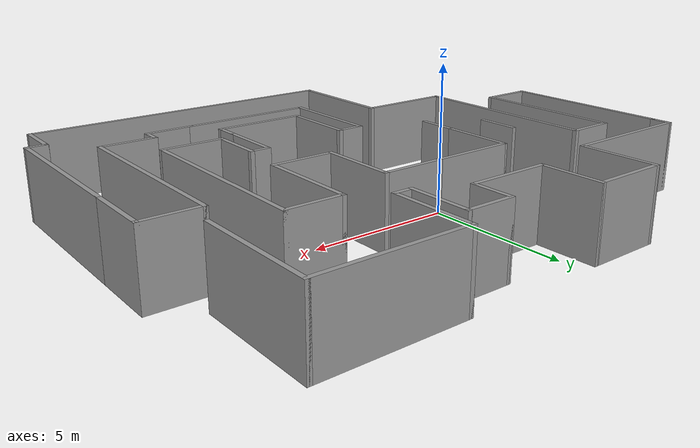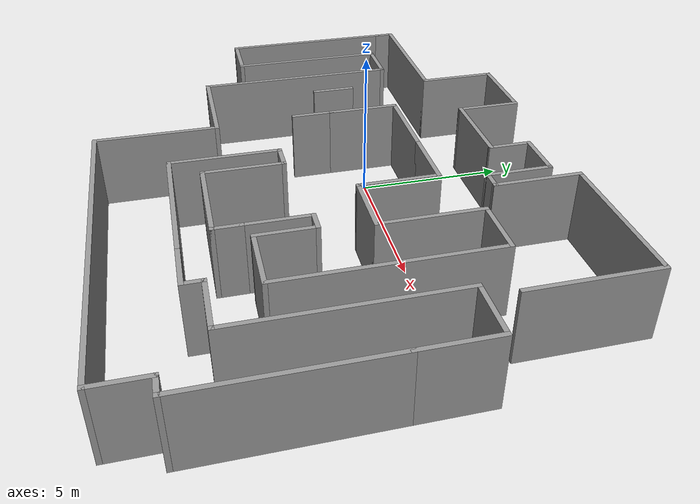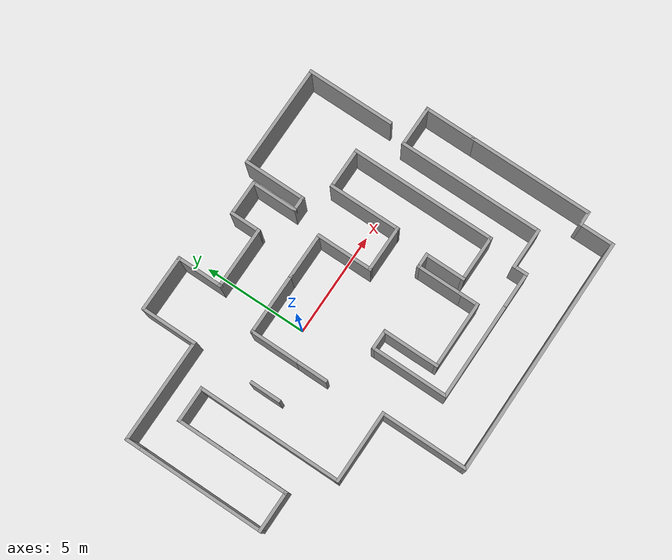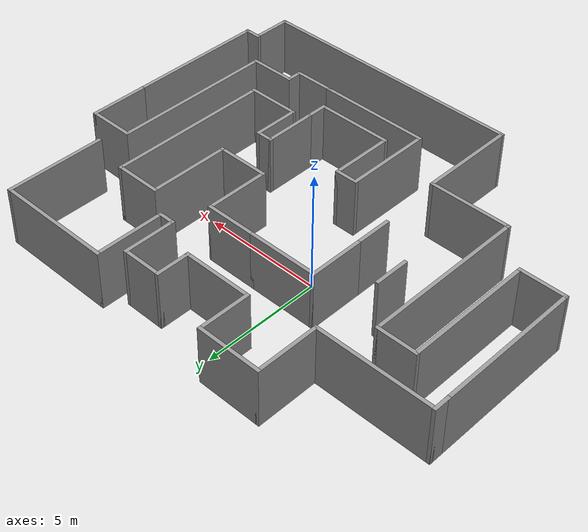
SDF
<?xml version='1.0'?>
<sdf version='1.6'>
  <model name='maze'>
    <pose frame=''>1.385 -1.65 0 0 -0 0</pose>
    <link name='Wall_0'>
      <collision name='Wall_0_Collision'>
        <geometry>
          <box>
            <size>1.5 0.15 2.5</size>
          </box>
        </geometry>
        <pose frame=''>0 0 1.25 0 -0 0</pose>
      </collision>
      <visual name='Wall_0_Visual'>
        <pose frame=''>0 0 1.25 0 -0 0</pose>
        <geometry>
          <box>
            <size>1.5 0.15 2.5</size>
          </box>
        </geometry>
        <material>
          <script>
            <uri>file://media/materials/scripts/gazebo.material</uri>
            <name>Gazebo/Grey</name>
          </script>
          <ambient>1 1 1 1</ambient>
        </material>
      </visual>
      <pose frame=''>-2.775 0.075 0 0 -0 1.5708</pose>
    </link>
    <link name='Wall_10'>
      <collision name='Wall_10_Collision'>
        <geometry>
          <box>
            <size>2.25 0.15 2.5</size>
          </box>
        </geometry>
        <pose frame=''>0 0 1.25 0 -0 0</pose>
      </collision>
      <visual name='Wall_10_Visual'>
        <pose frame=''>0 0 1.25 0 -0 0</pose>
        <geometry>
          <box>
            <size>2.25 0.15 2.5</size>
          </box>
        </geometry>
        <material>
          <script>
            <uri>file://media/materials/scripts/gazebo.material</uri>
            <name>Gazebo/Grey</name>
          </script>
          <ambient>1 1 1 1</ambient>
        </material>
      </visual>
      <pose frame=''>5.075 -3 0 0 -0 3.14159</pose>
    </link>
    <link name='Wall_11'>
      <collision name='Wall_11_Collision'>
        <geometry>
          <box>
            <size>2 0.15 2.5</size>
          </box>
        </geometry>
        <pose frame=''>0 0 1.25 0 -0 0</pose>
      </collision>
      <visual name='Wall_11_Visual'>
        <pose frame=''>0 0 1.25 0 -0 0</pose>
        <geometry>
          <box>
            <size>2 0.15 2.5</size>
          </box>
        </geometry>
        <material>
          <script>
            <uri>file://media/materials/scripts/gazebo.material</uri>
            <name>Gazebo/Grey</name>
          </script>
          <ambient>1 1 1 1</ambient>
        </material>
      </visual>
      <pose frame=''>4.025 -2.075 0 0 -0 1.5708</pose>
    </link>
    <link name='Wall_12'>
      <collision name='Wall_12_Collision'>
        <geometry>
          <box>
            <size>0.75 0.15 2.5</size>
          </box>
        </geometry>
        <pose frame=''>0 0 1.25 0 -0 0</pose>
      </collision>
      <visual name='Wall_12_Visual'>
        <pose frame=''>0 0 1.25 0 -0 0</pose>
        <geometry>
          <box>
            <size>0.75 0.15 2.5</size>
          </box>
        </geometry>
        <material>
          <script>
            <uri>file://media/materials/scripts/gazebo.material</uri>
            <name>Gazebo/Grey</name>
          </script>
          <ambient>1 1 1 1</ambient>
        </material>
      </visual>
      <pose frame=''>3.725 -1.15 0 0 -0 3.14159</pose>
    </link>
    <link name='Wall_13'>
      <collision name='Wall_13_Collision'>
        <geometry>
          <box>
            <size>2.25 0.15 2.5</size>
          </box>
        </geometry>
        <pose frame=''>0 0 1.25 0 -0 0</pose>
      </collision>
      <visual name='Wall_13_Visual'>
        <pose frame=''>0 0 1.25 0 -0 0</pose>
        <geometry>
          <box>
            <size>2.25 0.15 2.5</size>
          </box>
        </geometry>
        <material>
          <script>
            <uri>file://media/materials/scripts/gazebo.material</uri>
            <name>Gazebo/Grey</name>
          </script>
          <ambient>1 1 1 1</ambient>
        </material>
      </visual>
      <pose frame=''>3.425 -2.2 0 0 0 -1.5708</pose>
    </link>
    <link name='Wall_15'>
      <collision name='Wall_15_Collision'>
        <geometry>
          <box>
            <size>1 0.15 2.5</size>
          </box>
        </geometry>
        <pose frame=''>0 0 1.25 0 -0 0</pose>
      </collision>
      <visual name='Wall_15_Visual'>
        <pose frame=''>0 0 1.25 0 -0 0</pose>
        <geometry>
          <box>
            <size>1 0.15 2.5</size>
          </box>
        </geometry>
        <material>
          <script>
            <uri>file://media/materials/scripts/gazebo.material</uri>
            <name>Gazebo/Grey</name>
          </script>
          <ambient>1 1 1 1</ambient>
        </material>
      </visual>
      <pose frame=''>3.425 -3.675 0 0 0 -1.5708</pose>
    </link>
    <link name='Wall_16'>
      <collision name='Wall_16_Collision'>
        <geometry>
          <box>
            <size>3.25 0.15 2.5</size>
          </box>
        </geometry>
        <pose frame=''>0 0 1.25 0 -0 0</pose>
      </collision>
      <visual name='Wall_16_Visual'>
        <pose frame=''>0 0 1.25 0 -0 0</pose>
        <geometry>
          <box>
            <size>3.25 0.15 2.5</size>
          </box>
        </geometry>
        <material>
          <script>
            <uri>file://media/materials/scripts/gazebo.material</uri>
            <name>Gazebo/Grey</name>
          </script>
          <ambient>1 1 1 1</ambient>
        </material>
      </visual>
      <pose frame=''>1.875 -4.1 0 0 -0 3.14159</pose>
    </link>
    <link name='Wall_17'>
      <collision name='Wall_17_Collision'>
        <geometry>
          <box>
            <size>2.75 0.15 2.5</size>
          </box>
        </geometry>
        <pose frame=''>0 0 1.25 0 -0 0</pose>
      </collision>
      <visual name='Wall_17_Visual'>
        <pose frame=''>0 0 1.25 0 -0 0</pose>
        <geometry>
          <box>
            <size>2.75 0.15 2.5</size>
          </box>
        </geometry>
        <material>
          <script>
            <uri>file://media/materials/scripts/gazebo.material</uri>
            <name>Gazebo/Grey</name>
          </script>
          <ambient>1 1 1 1</ambient>
        </material>
      </visual>
      <pose frame=''>0.325 -2.8 0 0 -0 1.5708</pose>
    </link>
    <link name='Wall_18'>
      <collision name='Wall_18_Collision'>
        <geometry>
          <box>
            <size>1 0.15 2.5</size>
          </box>
        </geometry>
        <pose frame=''>0 0 1.25 0 -0 0</pose>
      </collision>
      <visual name='Wall_18_Visual'>
        <pose frame=''>0 0 1.25 0 -0 0</pose>
        <geometry>
          <box>
            <size>1 0.15 2.5</size>
          </box>
        </geometry>
        <material>
          <script>
            <uri>file://media/materials/scripts/gazebo.material</uri>
            <name>Gazebo/Grey</name>
          </script>
          <ambient>1 1 1 1</ambient>
        </material>
      </visual>
      <pose frame=''>-0.1 -1.5 0 0 -0 3.14159</pose>
    </link>
    <link name='Wall_19'>
      <collision name='Wall_19_Collision'>
        <geometry>
          <box>
            <size>3.75 0.15 2.5</size>
          </box>
        </geometry>
        <pose frame=''>0 0 1.25 0 -0 0</pose>
      </collision>
      <visual name='Wall_19_Visual'>
        <pose frame=''>0 0 1.25 0 -0 0</pose>
        <geometry>
          <box>
            <size>3.75 0.15 2.5</size>
          </box>
        </geometry>
        <material>
          <script>
            <uri>file://media/materials/scripts/gazebo.material</uri>
            <name>Gazebo/Grey</name>
          </script>
          <ambient>1 1 1 1</ambient>
        </material>
      </visual>
      <pose frame=''>-0.525 -3.3 0 0 0 -1.5708</pose>
    </link>
    <link name='Wall_2'>
      <collision name='Wall_2_Collision'>
        <geometry>
          <box>
            <size>2.5 0.15 2.5</size>
          </box>
        </geometry>
        <pose frame=''>0 0 1.25 0 -0 0</pose>
      </collision>
      <visual name='Wall_2_Visual'>
        <pose frame=''>0 0 1.25 0 -0 0</pose>
        <geometry>
          <box>
            <size>2.5 0.15 2.5</size>
          </box>
        </geometry>
        <material>
          <script>
            <uri>file://media/materials/scripts/gazebo.material</uri>
            <name>Gazebo/Grey</name>
          </script>
          <ambient>1 1 1 1</ambient>
        </material>
      </visual>
      <pose frame=''>-2.775 1.925 0 0 -0 1.5708</pose>
    </link>
    <link name='Wall_20'>
      <collision name='Wall_20_Collision'>
        <geometry>
          <box>
            <size>4.75 0.15 2.5</size>
          </box>
        </geometry>
        <pose frame=''>0 0 1.25 0 -0 0</pose>
      </collision>
      <visual name='Wall_20_Visual'>
        <pose frame=''>0 0 1.25 0 -0 0</pose>
        <geometry>
          <box>
            <size>4.75 0.15 2.5</size>
          </box>
        </geometry>
        <material>
          <script>
            <uri>file://media/materials/scripts/gazebo.material</uri>
            <name>Gazebo/Grey</name>
          </script>
          <ambient>1 1 1 1</ambient>
        </material>
      </visual>
      <pose frame=''>1.775 -5.1 0 0 -0 0</pose>
    </link>
    <link name='Wall_21'>
      <collision name='Wall_21_Collision'>
        <geometry>
          <box>
            <size>1.75 0.15 2.5</size>
          </box>
        </geometry>
        <pose frame=''>0 0 1.25 0 -0 0</pose>
      </collision>
      <visual name='Wall_21_Visual'>
        <pose frame=''>0 0 1.25 0 -0 0</pose>
        <geometry>
          <box>
            <size>1.75 0.15 2.5</size>
          </box>
        </geometry>
        <material>
          <script>
            <uri>file://media/materials/scripts/gazebo.material</uri>
            <name>Gazebo/Grey</name>
          </script>
          <ambient>1 1 1 1</ambient>
        </material>
      </visual>
      <pose frame=''>4.875 -5.1 0 0 -0 0</pose>
    </link>
    <link name='Wall_22'>
      <collision name='Wall_22_Collision'>
        <geometry>
          <box>
            <size>0.75 0.15 2.5</size>
          </box>
        </geometry>
        <pose frame=''>0 0 1.25 0 -0 0</pose>
      </collision>
      <visual name='Wall_22_Visual'>
        <pose frame=''>0 0 1.25 0 -0 0</pose>
        <geometry>
          <box>
            <size>0.75 0.15 2.5</size>
          </box>
        </geometry>
        <material>
          <script>
            <uri>file://media/materials/scripts/gazebo.material</uri>
            <name>Gazebo/Grey</name>
          </script>
          <ambient>1 1 1 1</ambient>
        </material>
      </visual>
      <pose frame=''>5.675 -4.8 0 0 -0 1.5708</pose>
    </link>
    <link name='Wall_23'>
      <collision name='Wall_23_Collision'>
        <geometry>
          <box>
            <size>2 0.15 2.5</size>
          </box>
        </geometry>
        <pose frame=''>0 0 1.25 0 -0 0</pose>
      </collision>
      <visual name='Wall_23_Visual'>
        <pose frame=''>0 0 1.25 0 -0 0</pose>
        <geometry>
          <box>
            <size>2 0.15 2.5</size>
          </box>
        </geometry>
        <material>
          <script>
            <uri>file://media/materials/scripts/gazebo.material</uri>
            <name>Gazebo/Grey</name>
          </script>
          <ambient>1 1 1 1</ambient>
        </material>
      </visual>
      <pose frame=''>6.6 -4.5 0 0 -0 0</pose>
    </link>
    <link name='Wall_24'>
      <collision name='Wall_24_Collision'>
        <geometry>
          <box>
            <size>7 0.15 2.5</size>
          </box>
        </geometry>
        <pose frame=''>0 0 1.25 0 -0 0</pose>
      </collision>
      <visual name='Wall_24_Visual'>
        <pose frame=''>0 0 1.25 0 -0 0</pose>
        <geometry>
          <box>
            <size>7 0.15 2.5</size>
          </box>
        </geometry>
        <material>
          <script>
            <uri>file://media/materials/scripts/gazebo.material</uri>
            <name>Gazebo/Grey</name>
          </script>
          <ambient>1 1 1 1</ambient>
        </material>
      </visual>
      <pose frame=''>7.525 -1.075 0 0 -0 1.5708</pose>
    </link>
    <link name='Wall_25'>
      <collision name='Wall_25_Collision'>
        <geometry>
          <box>
            <size>2 0.15 2.5</size>
          </box>
        </geometry>
        <pose frame=''>0 0 1.25 0 -0 0</pose>
      </collision>
      <visual name='Wall_25_Visual'>
        <pose frame=''>0 0 1.25 0 -0 0</pose>
        <geometry>
          <box>
            <size>2 0.15 2.5</size>
          </box>
        </geometry>
        <material>
          <script>
            <uri>file://media/materials/scripts/gazebo.material</uri>
            <name>Gazebo/Grey</name>
          </script>
          <ambient>1 1 1 1</ambient>
        </material>
      </visual>
      <pose frame=''>8.45 2.35 0 0 -0 0</pose>
    </link>
    <link name='Wall_26'>
      <collision name='Wall_26_Collision'>
        <geometry>
          <box>
            <size>2.5 0.15 2.5</size>
          </box>
        </geometry>
        <pose frame=''>0 0 1.25 0 -0 0</pose>
      </collision>
      <visual name='Wall_26_Visual'>
        <pose frame=''>0 0 1.25 0 -0 0</pose>
        <geometry>
          <box>
            <size>2.5 0.15 2.5</size>
          </box>
        </geometry>
        <material>
          <script>
            <uri>file://media/materials/scripts/gazebo.material</uri>
            <name>Gazebo/Grey</name>
          </script>
          <ambient>1 1 1 1</ambient>
        </material>
      </visual>
      <pose frame=''>9.375 1.175 0 0 0 -1.5708</pose>
    </link>
    <link name='Wall_27'>
      <collision name='Wall_27_Collision'>
        <geometry>
          <box>
            <size>6 0.15 2.5</size>
          </box>
        </geometry>
        <pose frame=''>0 0 1.25 0 -0 0</pose>
      </collision>
      <visual name='Wall_27_Visual'>
        <pose frame=''>0 0 1.25 0 -0 0</pose>
        <geometry>
          <box>
            <size>6 0.15 2.5</size>
          </box>
        </geometry>
        <material>
          <script>
            <uri>file://media/materials/scripts/gazebo.material</uri>
            <name>Gazebo/Grey</name>
          </script>
          <ambient>1 1 1 1</ambient>
        </material>
      </visual>
      <pose frame=''>9.375 -2.925 0 0 0 -1.5708</pose>
    </link>
    <link name='Wall_28'>
      <collision name='Wall_28_Collision'>
        <geometry>
          <box>
            <size>0.75 0.15 2.5</size>
          </box>
        </geometry>
        <pose frame=''>0 0 1.25 0 -0 0</pose>
      </collision>
      <visual name='Wall_28_Visual'>
        <pose frame=''>0 0 1.25 0 -0 0</pose>
        <geometry>
          <box>
            <size>0.75 0.15 2.5</size>
          </box>
        </geometry>
        <material>
          <script>
            <uri>file://media/materials/scripts/gazebo.material</uri>
            <name>Gazebo/Grey</name>
          </script>
          <ambient>1 1 1 1</ambient>
        </material>
      </visual>
      <pose frame=''>9.075 -5.85 0 0 -0 3.14159</pose>
    </link>
    <link name='Wall_29'>
      <collision name='Wall_29_Collision'>
        <geometry>
          <box>
            <size>1.75 0.15 2.5</size>
          </box>
        </geometry>
        <pose frame=''>0 0 1.25 0 -0 0</pose>
      </collision>
      <visual name='Wall_29_Visual'>
        <pose frame=''>0 0 1.25 0 -0 0</pose>
        <geometry>
          <box>
            <size>1.75 0.15 2.5</size>
          </box>
        </geometry>
        <material>
          <script>
            <uri>file://media/materials/scripts/gazebo.material</uri>
            <name>Gazebo/Grey</name>
          </script>
          <ambient>1 1 1 1</ambient>
        </material>
      </visual>
      <pose frame=''>8.775 -6.65 0 0 0 -1.5708</pose>
    </link>
    <link name='Wall_3'>
      <collision name='Wall_3_Collision'>
        <geometry>
          <box>
            <size>3 0.15 2.5</size>
          </box>
        </geometry>
        <pose frame=''>0 0 1.25 0 -0 0</pose>
      </collision>
      <visual name='Wall_3_Visual'>
        <pose frame=''>0 0 1.25 0 -0 0</pose>
        <geometry>
          <box>
            <size>3 0.15 2.5</size>
          </box>
        </geometry>
        <material>
          <script>
            <uri>file://media/materials/scripts/gazebo.material</uri>
            <name>Gazebo/Grey</name>
          </script>
          <ambient>1 1 1 1</ambient>
        </material>
      </visual>
      <pose frame=''>-1.35 3.1 0 0 -0 0</pose>
    </link>
    <link name='Wall_30'>
      <collision name='Wall_30_Collision'>
        <geometry>
          <box>
            <size>11.5 0.15 2.5</size>
          </box>
        </geometry>
        <pose frame=''>0 0 1.25 0 -0 0</pose>
      </collision>
      <visual name='Wall_30_Visual'>
        <pose frame=''>0 0 1.25 0 -0 0</pose>
        <geometry>
          <box>
            <size>11.5 0.15 2.5</size>
          </box>
        </geometry>
        <material>
          <script>
            <uri>file://media/materials/scripts/gazebo.material</uri>
            <name>Gazebo/Grey</name>
          </script>
          <ambient>1 1 1 1</ambient>
        </material>
      </visual>
      <pose frame=''>3.1 -7.45 0 0 -0 3.14159</pose>
    </link>
    <link name='Wall_31'>
      <collision name='Wall_31_Collision'>
        <geometry>
          <box>
            <size>4.25 0.15 2.5</size>
          </box>
        </geometry>
        <pose frame=''>0 0 1.25 0 -0 0</pose>
      </collision>
      <visual name='Wall_31_Visual'>
        <pose frame=''>0 0 1.25 0 -0 0</pose>
        <geometry>
          <box>
            <size>4.25 0.15 2.5</size>
          </box>
        </geometry>
        <material>
          <script>
            <uri>file://media/materials/scripts/gazebo.material</uri>
            <name>Gazebo/Grey</name>
          </script>
          <ambient>1 1 1 1</ambient>
        </material>
      </visual>
      <pose frame=''>-2.575 -5.4 0 0 -0 1.5708</pose>
    </link>
    <link name='Wall_32'>
      <collision name='Wall_32_Collision'>
        <geometry>
          <box>
            <size>3.5 0.15 2.5</size>
          </box>
        </geometry>
        <pose frame=''>0 0 1.25 0 -0 0</pose>
      </collision>
      <visual name='Wall_32_Visual'>
        <pose frame=''>0 0 1.25 0 -0 0</pose>
        <geometry>
          <box>
            <size>3.5 0.15 2.5</size>
          </box>
        </geometry>
        <material>
          <script>
            <uri>file://media/materials/scripts/gazebo.material</uri>
            <name>Gazebo/Grey</name>
          </script>
          <ambient>1 1 1 1</ambient>
        </material>
      </visual>
      <pose frame=''>-4.25 -3.35 0 0 -0 3.14159</pose>
    </link>
    <link name='Wall_33'>
      <collision name='Wall_33_Collision'>
        <geometry>
          <box>
            <size>7 0.15 2.5</size>
          </box>
        </geometry>
        <pose frame=''>0 0 1.25 0 -0 0</pose>
      </collision>
      <visual name='Wall_33_Visual'>
        <pose frame=''>0 0 1.25 0 -0 0</pose>
        <geometry>
          <box>
            <size>7 0.15 2.5</size>
          </box>
        </geometry>
        <material>
          <script>
            <uri>file://media/materials/scripts/gazebo.material</uri>
            <name>Gazebo/Grey</name>
          </script>
          <ambient>1 1 1 1</ambient>
        </material>
      </visual>
      <pose frame=''>-5.925 0.075 0 0 -0 1.5708</pose>
    </link>
    <link name='Wall_34'>
      <collision name='Wall_34_Collision'>
        <geometry>
          <box>
            <size>1.75 0.15 2.5</size>
          </box>
        </geometry>
        <pose frame=''>0 0 1.25 0 -0 0</pose>
      </collision>
      <visual name='Wall_34_Visual'>
        <pose frame=''>0 0 1.25 0 -0 0</pose>
        <geometry>
          <box>
            <size>1.75 0.15 2.5</size>
          </box>
        </geometry>
        <material>
          <script>
            <uri>file://media/materials/scripts/gazebo.material</uri>
            <name>Gazebo/Grey</name>
          </script>
          <ambient>1 1 1 1</ambient>
        </material>
      </visual>
      <pose frame=''>-6.725 3.5 0 0 -0 3.14159</pose>
    </link>
    <link name='Wall_35'>
      <collision name='Wall_35_Collision'>
        <geometry>
          <box>
            <size>5.5 0.15 2.5</size>
          </box>
        </geometry>
        <pose frame=''>0 0 1.25 0 -0 0</pose>
      </collision>
      <visual name='Wall_35_Visual'>
        <pose frame=''>0 0 1.25 0 -0 0</pose>
        <geometry>
          <box>
            <size>5.5 0.15 2.5</size>
          </box>
        </geometry>
        <material>
          <script>
            <uri>file://media/materials/scripts/gazebo.material</uri>
            <name>Gazebo/Grey</name>
          </script>
          <ambient>1 1 1 1</ambient>
        </material>
      </visual>
      <pose frame=''>-7.525 0.825 0 0 0 -1.5708</pose>
    </link>
    <link name='Wall_36'>
      <collision name='Wall_36_Collision'>
        <geometry>
          <box>
            <size>2 0.15 2.5</size>
          </box>
        </geometry>
        <pose frame=''>0 0 1.25 0 -0 0</pose>
      </collision>
      <visual name='Wall_36_Visual'>
        <pose frame=''>0 0 1.25 0 -0 0</pose>
        <geometry>
          <box>
            <size>2 0.15 2.5</size>
          </box>
        </geometry>
        <material>
          <script>
            <uri>file://media/materials/scripts/gazebo.material</uri>
            <name>Gazebo/Grey</name>
          </script>
          <ambient>1 1 1 1</ambient>
        </material>
      </visual>
      <pose frame=''>-8.45 -1.85 0 0 -0 3.14159</pose>
    </link>
    <link name='Wall_37'>
      <collision name='Wall_37_Collision'>
        <geometry>
          <box>
            <size>6.25 0.15 2.5</size>
          </box>
        </geometry>
        <pose frame=''>0 0 1.25 0 -0 0</pose>
      </collision>
      <visual name='Wall_37_Visual'>
        <pose frame=''>0 0 1.25 0 -0 0</pose>
        <geometry>
          <box>
            <size>6.25 0.15 2.5</size>
          </box>
        </geometry>
        <material>
          <script>
            <uri>file://media/materials/scripts/gazebo.material</uri>
            <name>Gazebo/Grey</name>
          </script>
          <ambient>1 1 1 1</ambient>
        </material>
      </visual>
      <pose frame=''>-9.375 1.2 0 0 -0 1.5708</pose>
    </link>
    <link name='Wall_39'>
      <collision name='Wall_39_Collision'>
        <geometry>
          <box>
            <size>1.5 0.15 2.5</size>
          </box>
        </geometry>
        <pose frame=''>0 0 1.25 0 -0 0</pose>
      </collision>
      <visual name='Wall_39_Visual'>
        <pose frame=''>0 0 1.25 0 -0 0</pose>
        <geometry>
          <box>
            <size>1.5 0.15 2.5</size>
          </box>
        </geometry>
        <material>
          <script>
            <uri>file://media/materials/scripts/gazebo.material</uri>
            <name>Gazebo/Grey</name>
          </script>
          <ambient>1 1 1 1</ambient>
        </material>
      </visual>
      <pose frame=''>-4.55299 1.21985 0 0 0 -1.5708</pose>
    </link>
    <link name='Wall_4'>
      <collision name='Wall_4_Collision'>
        <geometry>
          <box>
            <size>2.25 0.15 2.5</size>
          </box>
        </geometry>
        <pose frame=''>0 0 1.25 0 -0 0</pose>
      </collision>
      <visual name='Wall_4_Visual'>
        <pose frame=''>0 0 1.25 0 -0 0</pose>
        <geometry>
          <box>
            <size>2.25 0.15 2.5</size>
          </box>
        </geometry>
        <material>
          <script>
            <uri>file://media/materials/scripts/gazebo.material</uri>
            <name>Gazebo/Grey</name>
          </script>
          <ambient>1 1 1 1</ambient>
        </material>
      </visual>
      <pose frame=''>1.125 3.1 0 0 -0 0</pose>
    </link>
    <link name='Wall_41'>
      <collision name='Wall_41_Collision'>
        <geometry>
          <box>
            <size>0.75 0.15 2.5</size>
          </box>
        </geometry>
        <pose frame=''>0 0 1.25 0 -0 0</pose>
      </collision>
      <visual name='Wall_41_Visual'>
        <pose frame=''>0 0 1.25 0 -0 0</pose>
        <geometry>
          <box>
            <size>0.75 0.15 2.5</size>
          </box>
        </geometry>
        <material>
          <script>
            <uri>file://media/materials/scripts/gazebo.material</uri>
            <name>Gazebo/Grey</name>
          </script>
          <ambient>1 1 1 1</ambient>
        </material>
      </visual>
      <pose frame=''>-9.375 4.55 0 0 -0 1.5708</pose>
    </link>
    <link name='Wall_42'>
      <collision name='Wall_42_Collision'>
        <geometry>
          <box>
            <size>5 0.15 2.5</size>
          </box>
        </geometry>
        <pose frame=''>0 0 1.25 0 -0 0</pose>
      </collision>
      <visual name='Wall_42_Visual'>
        <pose frame=''>0 0 1.25 0 -0 0</pose>
        <geometry>
          <box>
            <size>5 0.15 2.5</size>
          </box>
        </geometry>
        <material>
          <script>
            <uri>file://media/materials/scripts/gazebo.material</uri>
            <name>Gazebo/Grey</name>
          </script>
          <ambient>1 1 1 1</ambient>
        </material>
      </visual>
      <pose frame=''>-6.95 4.85 0 0 -0 0</pose>
    </link>
    <link name='Wall_43'>
      <collision name='Wall_43_Collision'>
        <geometry>
          <box>
            <size>2.75 0.15 2.5</size>
          </box>
        </geometry>
        <pose frame=''>0 0 1.25 0 -0 0</pose>
      </collision>
      <visual name='Wall_43_Visual'>
        <pose frame=''>0 0 1.25 0 -0 0</pose>
        <geometry>
          <box>
            <size>2.75 0.15 2.5</size>
          </box>
        </geometry>
        <material>
          <script>
            <uri>file://media/materials/scripts/gazebo.material</uri>
            <name>Gazebo/Grey</name>
          </script>
          <ambient>1 1 1 1</ambient>
        </material>
      </visual>
      <pose frame=''>-4.525 6.15 0 0 -0 1.5708</pose>
    </link>
    <link name='Wall_44'>
      <collision name='Wall_44_Collision'>
        <geometry>
          <box>
            <size>2.75 0.15 2.5</size>
          </box>
        </geometry>
        <pose frame=''>0 0 1.25 0 -0 0</pose>
      </collision>
      <visual name='Wall_44_Visual'>
        <pose frame=''>0 0 1.25 0 -0 0</pose>
        <geometry>
          <box>
            <size>2.75 0.15 2.5</size>
          </box>
        </geometry>
        <material>
          <script>
            <uri>file://media/materials/scripts/gazebo.material</uri>
            <name>Gazebo/Grey</name>
          </script>
          <ambient>1 1 1 1</ambient>
        </material>
      </visual>
      <pose frame=''>-3.225 7.45 0 0 -0 0</pose>
    </link>
    <link name='Wall_45'>
      <collision name='Wall_45_Collision'>
        <geometry>
          <box>
            <size>2.25 0.15 2.5</size>
          </box>
        </geometry>
        <pose frame=''>0 0 1.25 0 -0 0</pose>
      </collision>
      <visual name='Wall_45_Visual'>
        <pose frame=''>0 0 1.25 0 -0 0</pose>
        <geometry>
          <box>
            <size>2.25 0.15 2.5</size>
          </box>
        </geometry>
        <material>
          <script>
            <uri>file://media/materials/scripts/gazebo.material</uri>
            <name>Gazebo/Grey</name>
          </script>
          <ambient>1 1 1 1</ambient>
        </material>
      </visual>
      <pose frame=''>-1.925 6.4 0 0 0 -1.5708</pose>
    </link>
    <link name='Wall_47'>
      <collision name='Wall_47_Collision'>
        <geometry>
          <box>
            <size>3 0.15 2.5</size>
          </box>
        </geometry>
        <pose frame=''>0 0 1.25 0 -0 0</pose>
      </collision>
      <visual name='Wall_47_Visual'>
        <pose frame=''>0 0 1.25 0 -0 0</pose>
        <geometry>
          <box>
            <size>3 0.15 2.5</size>
          </box>
        </geometry>
        <material>
          <script>
            <uri>file://media/materials/scripts/gazebo.material</uri>
            <name>Gazebo/Grey</name>
          </script>
          <ambient>1 1 1 1</ambient>
        </material>
      </visual>
      <pose frame=''>-0.5 5.35 0 0 -0 0</pose>
    </link>
    <link name='Wall_48'>
      <collision name='Wall_48_Collision'>
        <geometry>
          <box>
            <size>1.5 0.15 2.5</size>
          </box>
        </geometry>
        <pose frame=''>0 0 1.25 0 -0 0</pose>
      </collision>
      <visual name='Wall_48_Visual'>
        <pose frame=''>0 0 1.25 0 -0 0</pose>
        <geometry>
          <box>
            <size>1.5 0.15 2.5</size>
          </box>
        </geometry>
        <material>
          <script>
            <uri>file://media/materials/scripts/gazebo.material</uri>
            <name>Gazebo/Grey</name>
          </script>
          <ambient>1 1 1 1</ambient>
        </material>
      </visual>
      <pose frame=''>0.925 6.025 0 0 -0 1.5708</pose>
    </link>
    <link name='Wall_49'>
      <collision name='Wall_49_Collision'>
        <geometry>
          <box>
            <size>1.75 0.15 2.5</size>
          </box>
        </geometry>
        <pose frame=''>0 0 1.25 0 -0 0</pose>
      </collision>
      <visual name='Wall_49_Visual'>
        <pose frame=''>0 0 1.25 0 -0 0</pose>
        <geometry>
          <box>
            <size>1.75 0.15 2.5</size>
          </box>
        </geometry>
        <material>
          <script>
            <uri>file://media/materials/scripts/gazebo.material</uri>
            <name>Gazebo/Grey</name>
          </script>
          <ambient>1 1 1 1</ambient>
        </material>
      </visual>
      <pose frame=''>1.725 6.7 0 0 -0 0</pose>
    </link>
    <link name='Wall_5'>
      <collision name='Wall_5_Collision'>
        <geometry>
          <box>
            <size>2.75 0.15 2.5</size>
          </box>
        </geometry>
        <pose frame=''>0 0 1.25 0 -0 0</pose>
      </collision>
      <visual name='Wall_5_Visual'>
        <pose frame=''>0 0 1.25 0 -0 0</pose>
        <geometry>
          <box>
            <size>2.75 0.15 2.5</size>
          </box>
        </geometry>
        <material>
          <script>
            <uri>file://media/materials/scripts/gazebo.material</uri>
            <name>Gazebo/Grey</name>
          </script>
          <ambient>1 1 1 1</ambient>
        </material>
      </visual>
      <pose frame=''>2.175 1.8 0 0 0 -1.5708</pose>
    </link>
    <link name='Wall_50'>
      <collision name='Wall_50_Collision'>
        <geometry>
          <box>
            <size>2.25 0.15 2.5</size>
          </box>
        </geometry>
        <pose frame=''>0 0 1.25 0 -0 0</pose>
      </collision>
      <visual name='Wall_50_Visual'>
        <pose frame=''>0 0 1.25 0 -0 0</pose>
        <geometry>
          <box>
            <size>2.25 0.15 2.5</size>
          </box>
        </geometry>
        <material>
          <script>
            <uri>file://media/materials/scripts/gazebo.material</uri>
            <name>Gazebo/Grey</name>
          </script>
          <ambient>1 1 1 1</ambient>
        </material>
      </visual>
      <pose frame=''>2.525 5.65 0 0 0 -1.5708</pose>
    </link>
    <link name='Wall_51'>
      <collision name='Wall_51_Collision'>
        <geometry>
          <box>
            <size>0.75 0.15 2.5</size>
          </box>
        </geometry>
        <pose frame=''>0 0 1.25 0 -0 0</pose>
      </collision>
      <visual name='Wall_51_Visual'>
        <pose frame=''>0 0 1.25 0 -0 0</pose>
        <geometry>
          <box>
            <size>0.75 0.15 2.5</size>
          </box>
        </geometry>
        <material>
          <script>
            <uri>file://media/materials/scripts/gazebo.material</uri>
            <name>Gazebo/Grey</name>
          </script>
          <ambient>1 1 1 1</ambient>
        </material>
      </visual>
      <pose frame=''>2.825 4.6 0 0 -0 0</pose>
    </link>
    <link name='Wall_52'>
      <collision name='Wall_52_Collision'>
        <geometry>
          <box>
            <size>3 0.15 2.5</size>
          </box>
        </geometry>
        <pose frame=''>0 0 1.25 0 -0 0</pose>
      </collision>
      <visual name='Wall_52_Visual'>
        <pose frame=''>0 0 1.25 0 -0 0</pose>
        <geometry>
          <box>
            <size>3 0.15 2.5</size>
          </box>
        </geometry>
        <material>
          <script>
            <uri>file://media/materials/scripts/gazebo.material</uri>
            <name>Gazebo/Grey</name>
          </script>
          <ambient>1 1 1 1</ambient>
        </material>
      </visual>
      <pose frame=''>3.125 6.025 0 0 -0 1.5708</pose>
    </link>
    <link name='Wall_53'>
      <collision name='Wall_53_Collision'>
        <geometry>
          <box>
            <size>5 0.15 2.5</size>
          </box>
        </geometry>
        <pose frame=''>0 0 1.25 0 -0 0</pose>
      </collision>
      <visual name='Wall_53_Visual'>
        <pose frame=''>0 0 1.25 0 -0 0</pose>
        <geometry>
          <box>
            <size>5 0.15 2.5</size>
          </box>
        </geometry>
        <material>
          <script>
            <uri>file://media/materials/scripts/gazebo.material</uri>
            <name>Gazebo/Grey</name>
          </script>
          <ambient>1 1 1 1</ambient>
        </material>
      </visual>
      <pose frame=''>5.55 7.45 0 0 -0 0</pose>
    </link>
    <link name='Wall_54'>
      <collision name='Wall_54_Collision'>
        <geometry>
          <box>
            <size>4.25 0.15 2.5</size>
          </box>
        </geometry>
        <pose frame=''>0 0 1.25 0 -0 0</pose>
      </collision>
      <visual name='Wall_54_Visual'>
        <pose frame=''>0 0 1.25 0 -0 0</pose>
        <geometry>
          <box>
            <size>4.25 0.15 2.5</size>
          </box>
        </geometry>
        <material>
          <script>
            <uri>file://media/materials/scripts/gazebo.material</uri>
            <name>Gazebo/Grey</name>
          </script>
          <ambient>1 1 1 1</ambient>
        </material>
      </visual>
      <pose frame=''>7.975 5.4 0 0 0 -1.5708</pose>
    </link>
    <link name='Wall_6'>
      <collision name='Wall_6_Collision'>
        <geometry>
          <box>
            <size>2.25 0.15 2.5</size>
          </box>
        </geometry>
        <pose frame=''>0 0 1.25 0 -0 0</pose>
      </collision>
      <visual name='Wall_6_Visual'>
        <pose frame=''>0 0 1.25 0 -0 0</pose>
        <geometry>
          <box>
            <size>2.25 0.15 2.5</size>
          </box>
        </geometry>
        <material>
          <script>
            <uri>file://media/materials/scripts/gazebo.material</uri>
            <name>Gazebo/Grey</name>
          </script>
          <ambient>1 1 1 1</ambient>
        </material>
      </visual>
      <pose frame=''>3.225 0.5 0 0 -0 0</pose>
    </link>
    <link name='Wall_7'>
      <collision name='Wall_7_Collision'>
        <geometry>
          <box>
            <size>3.5 0.15 2.5</size>
          </box>
        </geometry>
        <pose frame=''>0 0 1.25 0 -0 0</pose>
      </collision>
      <visual name='Wall_7_Visual'>
        <pose frame=''>0 0 1.25 0 -0 0</pose>
        <geometry>
          <box>
            <size>3.5 0.15 2.5</size>
          </box>
        </geometry>
        <material>
          <script>
            <uri>file://media/materials/scripts/gazebo.material</uri>
            <name>Gazebo/Grey</name>
          </script>
          <ambient>1 1 1 1</ambient>
        </material>
      </visual>
      <pose frame=''>4.275 2.175 0 0 -0 1.5708</pose>
    </link>
    <link name='Wall_8'>
      <collision name='Wall_8_Collision'>
        <geometry>
          <box>
            <size>2 0.15 2.5</size>
          </box>
        </geometry>
        <pose frame=''>0 0 1.25 0 -0 0</pose>
      </collision>
      <visual name='Wall_8_Visual'>
        <pose frame=''>0 0 1.25 0 -0 0</pose>
        <geometry>
          <box>
            <size>2 0.15 2.5</size>
          </box>
        </geometry>
        <material>
          <script>
            <uri>file://media/materials/scripts/gazebo.material</uri>
            <name>Gazebo/Grey</name>
          </script>
          <ambient>1 1 1 1</ambient>
        </material>
      </visual>
      <pose frame=''>5.2 3.85 0 0 -0 0</pose>
    </link>
    <link name='Wall_9'>
      <collision name='Wall_9_Collision'>
        <geometry>
          <box>
            <size>7 0.15 2.5</size>
          </box>
        </geometry>
        <pose frame=''>0 0 1.25 0 -0 0</pose>
      </collision>
      <visual name='Wall_9_Visual'>
        <pose frame=''>0 0 1.25 0 -0 0</pose>
        <geometry>
          <box>
            <size>7 0.15 2.5</size>
          </box>
        </geometry>
        <material>
          <script>
            <uri>file://media/materials/scripts/gazebo.material</uri>
            <name>Gazebo/Grey</name>
          </script>
          <ambient>1 1 1 1</ambient>
        </material>
      </visual>
      <pose frame=''>6.125 0.425 0 0 0 -1.5708</pose>
    </link>
    <static>1</static>
  </model>
</sdf>
